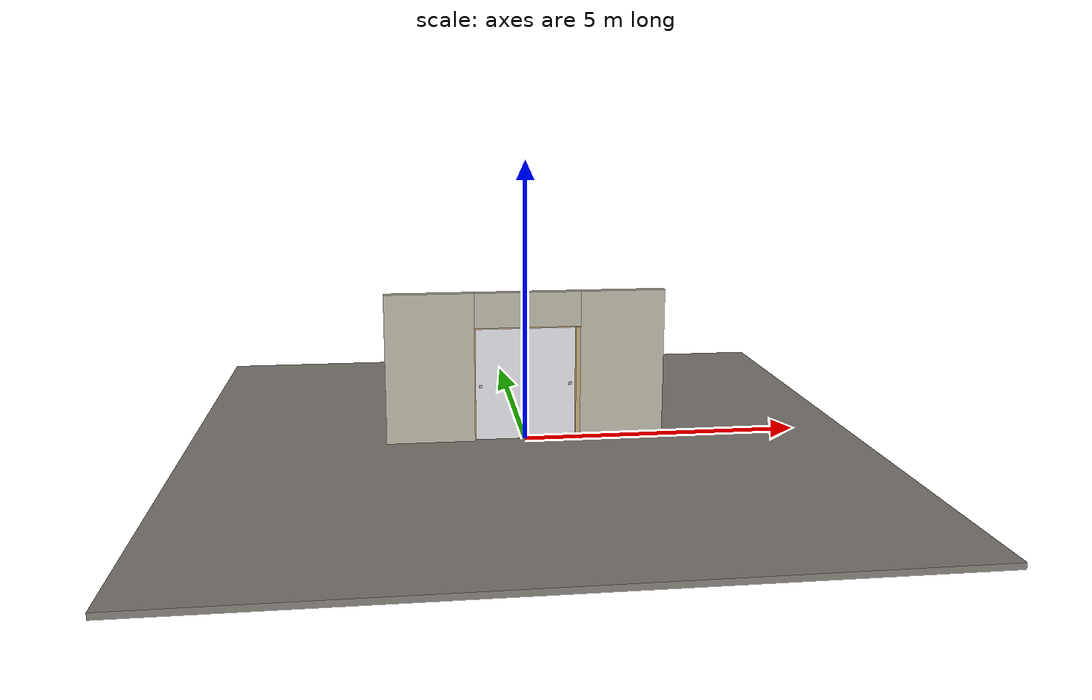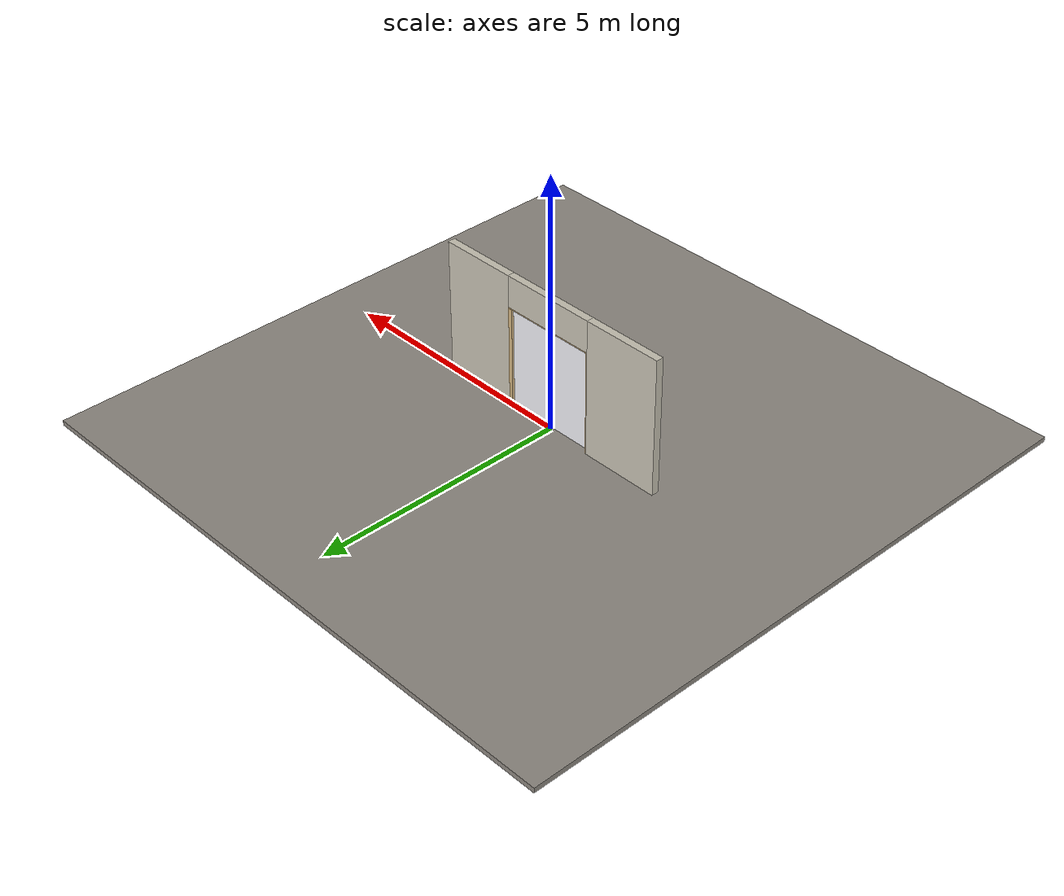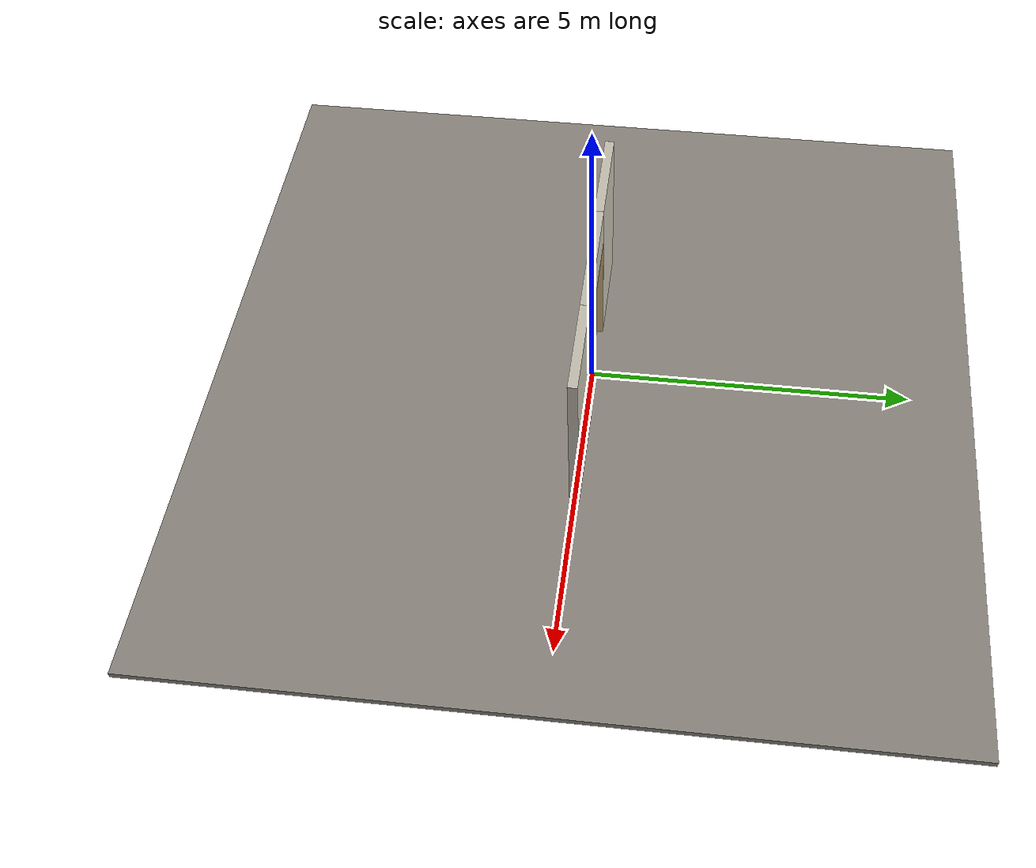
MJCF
<?xml version="1.0" ?>
<mujoco model="db0550_sliding_bypass_simple">
  <compiler angle="radian" meshdir="../../hardware" texturedir="../../textures" autolimits="true" inertiafromgeom="false"/>
  <option timestep="0.002" integrator="implicitfast" cone="elliptic" impratio="10" noslip_iterations="3">
    <flag multiccd="enable"/>
  </option>
  <size memory="16M"/>
  <default>
    <geom condim="4" solref="0.005 1" solimp="0.95 0.99 0.001"/>
    <joint solreflimit="0.005 1" solimplimit="0.95 0.99 0.001"/>
    <tendon solreflimit="0.005 1"/>
    <equality solref="0.002 1"/>
  </default>
  <visual>
    <headlight ambient="0.4 0.4 0.4" diffuse="0.7 0.7 0.7" specular="0.2 0.2 0.2"/>
    <quality shadowsize="4096"/>
    <map znear="0.01" zfar="60"/>
  </visual>
  <asset>
    <material name="mat_floor" rgba="0.55 0.53 0.5 1" specular="0.2" shininess="0.15" reflectance="0"/>
    <material name="mat_wall" rgba="0.78 0.76 0.7 1" specular="0.2" shininess="0.1" reflectance="0"/>
    <material name="mat_frame" rgba="0.82 0.7 0.5 1" specular="0.2" shininess="0.45" reflectance="0"/>
    <material name="mat_track" rgba="0.8 0.81 0.83 1" specular="0.8" shininess="0.6" reflectance="0.4"/>
    <material name="mat_leaf_0" rgba="0.95 0.95 0.97 1" specular="0.8" shininess="1" reflectance="0.4"/>
    <material name="mat_glass_leaf" rgba="0.95 0.95 0.97 1" specular="0.8" shininess="1" reflectance="0.4"/>
    <material name="mat_patch" rgba="0.75 0.76 0.77 1" specular="0.8" shininess="0.65" reflectance="0.4"/>
    <material name="mat_roller" rgba="0.65 0.66 0.68 1" specular="0.74" shininess="0.5" reflectance="0.36"/>
    <material name="mat_op_nickel_satin" rgba="0.72 0.7 0.66 1" specular="0.8" shininess="0.65" reflectance="0.4"/>
    <material name="mat_leaf_1" rgba="0.95 0.95 0.97 1" specular="0.8" shininess="1" reflectance="0.4"/>
    <material name="mat_hook" rgba="0.75 0.76 0.77 1" specular="0.8" shininess="0.65" reflectance="0.4"/>
    <texture name="skybox" type="skybox" builtin="gradient" rgb1="0.6 0.7 0.85" rgb2="0.9 0.92 0.95" width="256" height="256"/>
  </asset>
  <worldbody>
    <light name="sun" pos="1.5 -2.5 4" dir="-0.3 0.5 -0.8" directional="true" diffuse="0.8 0.8 0.8" specular="0.3 0.3 0.3" castshadow="true"/>
    <light name="fill" pos="-1.5 2.5 3" dir="0.3 -0.5 -0.7" directional="true" diffuse="0.35 0.35 0.4" castshadow="false"/>
    <camera name="robot_view" pos="0 -2.54875 1.73965" xyaxes="1 0 0 0 0.26963 0.962964" fovy="52"/>
    <camera name="far_view" pos="0 2.54875 1.73965" xyaxes="-1 0 0 0 -0.26963 0.962964" fovy="52"/>
    <camera name="iso" pos="1.93705 -2.14095 2.14745" xyaxes="0.741536 0.670913 0 -0.242917 0.268487 0.932151" fovy="46"/>
    <camera name="detail_handle" pos="-0.631 -0.831 1.28" xyaxes="0.97561 0.219512 0 -0.070934 0.315262 0.94635" fovy="38"/>
    <geom name="floor" type="box" size="6 6 0.05" pos="0 0 -0.05" material="mat_floor" group="0" contype="1" conaffinity="1" friction="0.8 0.005 0.0001" density="2400"/>
    <geom name="wall_left" type="box" size="0.7885 0.0725 1.35" pos="-1.7115 0 1.35" material="mat_wall" group="0" contype="1" conaffinity="1" friction="0.6 0.005 0.0001" density="800"/>
    <geom name="wall_right" type="box" size="0.7585 0.0725 1.35" pos="1.7415 0 1.35" material="mat_wall" group="0" contype="1" conaffinity="1" friction="0.6 0.005 0.0001" density="800"/>
    <geom name="wall_header" type="box" size="0.953 0.0725 0.3145" pos="0.03 0 2.3855" material="mat_wall" group="0" contype="1" conaffinity="1" friction="0.6 0.005 0.0001" density="800"/>
    <geom name="jamb_l" type="box" size="0.0095 0.0725 1.026" pos="-0.9135 0 1.026" material="mat_frame" group="0" contype="1" conaffinity="1" friction="0.6 0.005 0.0001" density="300"/>
    <geom name="jamb_head" type="box" size="0.923 0.0725 0.0095" pos="0 0 2.0615" material="mat_frame" group="0" contype="1" conaffinity="1" friction="0.6 0.005 0.0001" density="300"/>
    <geom name="leaf_0_track_header" type="box" size="0.949 0.025 0.04" pos="-0.002 -0.028 2.111" material="mat_track" group="0" contype="1" conaffinity="1" friction="0.6 0.005 0.0001" density="2700"/>
    <geom name="leaf_1_track_header" type="box" size="0.949 0.025 0.04" pos="0.002 0.028 2.111" material="mat_track" group="0" contype="1" conaffinity="1" friction="0.6 0.005 0.0001" density="2700"/>
    <geom name="jamb_latch_0" type="box" size="0.0395 0.0725 1.026" pos="0.9435 0 1.026" material="mat_frame" group="0" contype="1" conaffinity="1" friction="0.6 0.005 0.0001" density="300"/>
    <site name="approach_point" pos="0 -1.5 0" quat="1 0 0 0" size="0.05" rgba="0.2 0.9 0.2 0.5" group="4"/>
    <site name="goal_point" pos="0 1.5 0" quat="1 0 0 0" size="0.05" rgba="0.2 0.9 0.2 0.5" group="4"/>
    <site name="door_plane_center" pos="0 0 1.026" quat="1 0 0 0" size="0.02" rgba="0.2 0.9 0.2 0.5" group="4"/>
    <body name="leaf_0" pos="-0.444 -0.028 0">
      <inertial pos="-0.00004 0 1.027997" mass="27.88372" quat="0.499999 0.499998 0.500002 -0.500001" diaginertia="1.941443744 9.593424228 11.534700613"/>
      <joint name="leaf_0_slide" type="slide" axis="1 0 0" limited="true" range="0 0.868" damping="3.395436" frictionloss="10.673951" armature="0.5"/>
      <geom name="leaf_0_glass" type="box" size="0.457 0.003 1.016" pos="0 0 1.028" material="mat_glass_leaf" group="0" contype="1" conaffinity="1" friction="0.4 0.005 0.0001" density="1"/>
      <geom name="leaf_0_pull_n" type="box" size="0.0275 0.0005 0.0275" pos="-0.367 -0.0035 1" material="mat_op_nickel_satin" group="1" contype="0" conaffinity="0" density="1000"/>
      <site name="leaf_0_pull_grip_n" pos="-0.367 -0.003 1" quat="1 0 0 0" size="0.012" rgba="0.2 0.9 0.2 0.5" group="4"/>
      <site name="leaf_0_edge_mid" pos="-0.457 0 1.028" quat="1 0 0 0" size="0.02" rgba="0.2 0.9 0.2 0.5" group="4"/>
    </body>
    <body name="leaf_1" pos="0.444 0.028 0">
      <inertial pos="0.00004 0 1.027997" mass="27.88372" quat="0.500001 0.500002 0.499998 -0.499999" diaginertia="1.941443744 9.593424228 11.534700613"/>
      <joint name="leaf_1_slide" type="slide" axis="-1 0 0" limited="true" range="0 0.868" damping="3.395436" frictionloss="10.673951" armature="0.5"/>
      <geom name="leaf_1_glass" type="box" size="0.457 0.003 1.016" pos="0 0 1.028" material="mat_glass_leaf" group="0" contype="1" conaffinity="1" friction="0.4 0.005 0.0001" density="1"/>
      <geom name="leaf_1_pull_n" type="box" size="0.0275 0.0005 0.0275" pos="0.367 -0.0035 1" material="mat_op_nickel_satin" group="1" contype="0" conaffinity="0" density="1000"/>
      <site name="leaf_1_pull_grip_n" pos="0.367 -0.003 1" quat="1 0 0 0" size="0.012" rgba="0.2 0.9 0.2 0.5" group="4"/>
      <site name="leaf_1_edge_mid" pos="0.457 0 1.028" quat="1 0 0 0" size="0.02" rgba="0.2 0.9 0.2 0.5" group="4"/>
    </body>
  </worldbody>
  <sensor>
    <jointpos name="leaf_0_slide_pos" joint="leaf_0_slide"/>
    <jointvel name="leaf_0_slide_vel" joint="leaf_0_slide"/>
    <jointpos name="leaf_1_slide_pos" joint="leaf_1_slide"/>
    <jointvel name="leaf_1_slide_vel" joint="leaf_1_slide"/>
  </sensor>
</mujoco>
